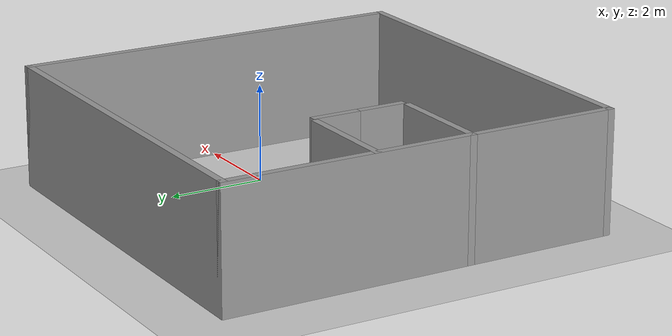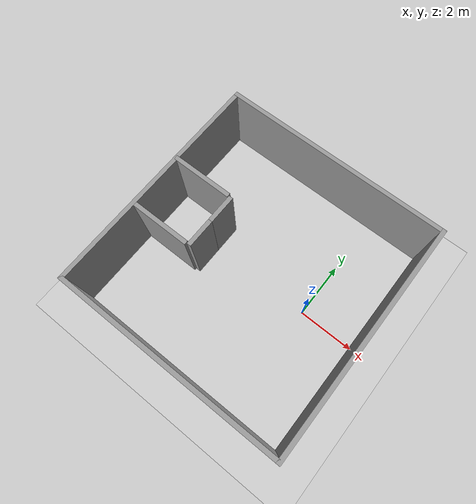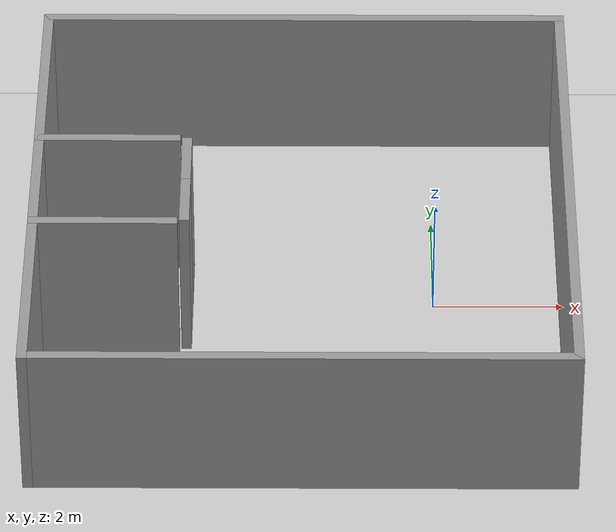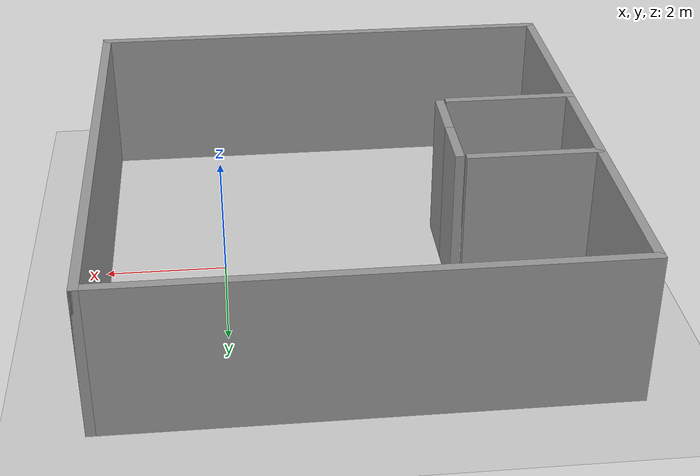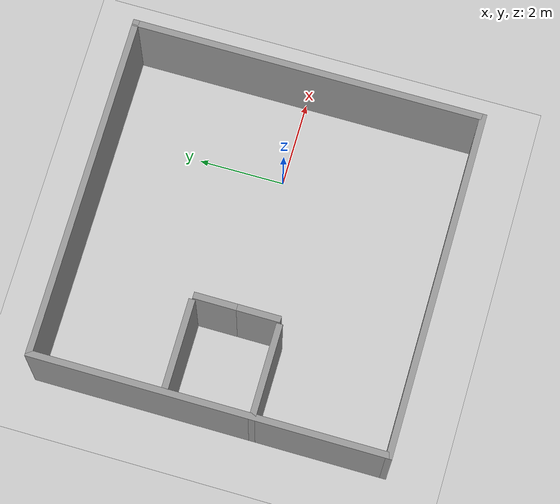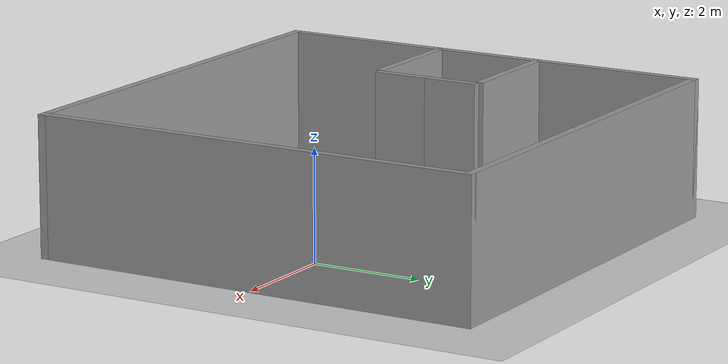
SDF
<sdf version="1.6">
 <world name="default">
  <light name="sun" type="directional">
   <pose>0 0 10 0 -0 0</pose>
   <diffuse>0.8 0.8 0.8 1</diffuse>
   <specular>0.1 0.1 0.1 1</specular>
   <attenuation>
    <range>1000</range>
    <constant>0.9</constant>
    <linear>0.01</linear>
    <quadratic>0.001</quadratic>
   </attenuation>
   <direction>-0.5 0.5 -1</direction>
  </light>
  <model name="ground_plane">
   <static>1</static>
   <link name="link">
    <collision name="collision">
     <geometry><plane><normal>0 0 1</normal><size>100 100</size></plane></geometry>
     <surface><friction><ode><mu>100</mu><mu2>50</mu2></ode></friction></surface>
    </collision>
    <visual name="visual">
     <cast_shadows>0</cast_shadows>
     <geometry><plane><normal>0 0 1</normal><size>100 100</size></plane></geometry>
     <material>
      <script><uri>file://media/materials/scripts/gazebo.material</uri><name>Gazebo/Grey</name></script>
     </material>
    </visual>
   </link>
  </model>
  <gravity>0 0 -9.8</gravity>
  <magnetic_field>6e-06 2.3e-05 -4.2e-05</magnetic_field>
  <atmosphere type="adiabatic"/>
  <physics name="default_physics" default="0" type="ode">
   <max_step_size>0.001</max_step_size>
   <real_time_factor>1</real_time_factor>
   <real_time_update_rate>1000</real_time_update_rate>
  </physics>
  <scene><ambient>0.4 0.4 0.4 1</ambient><background>0.7 0.7 0.7 1</background><shadows>1</shadows></scene>
  <spherical_coordinates>
   <surface_model>EARTH_WGS84</surface_model>
   <latitude_deg>0</latitude_deg>
   <longitude_deg>0</longitude_deg>
   <elevation>0</elevation>
   <heading_deg>0</heading_deg>
  </spherical_coordinates>
  <model name="ep4">
   <pose>-2 0 0 0 -0 0</pose>
   <link name="Wall_0">
    <collision name="Wall_0_Collision">
     <geometry><box><size>8.3 0.15 2.5</size></box></geometry>
     <pose>0 0 1.25 0 -0 0</pose>
    </collision>
    <visual name="Wall_0_Visual">
     <pose>0 0 1.25 0 -0 0</pose>
     <geometry><box><size>8.3 0.15 2.5</size></box></geometry>
     <material>
      <script><uri>file://media/materials/scripts/gazebo.material</uri><name>Gazebo/Grey</name></script>
      <ambient>1 1 1 1</ambient>
     </material>
     <meta><layer>0</layer></meta>
    </visual>
    <pose>-4 0 0 0 -0 1.5708</pose>
   </link>
   <link name="Wall_1">
    <collision name="Wall_1_Collision">
     <geometry><box><size>8.15 0.15 2.5</size></box></geometry>
     <pose>0 0 1.25 0 -0 0</pose>
    </collision>
    <visual name="Wall_1_Visual">
     <pose>0 0 1.25 0 -0 0</pose>
     <geometry><box><size>8.15 0.15 2.5</size></box></geometry>
     <material>
      <script><uri>file://media/materials/scripts/gazebo.material</uri><name>Gazebo/Grey</name></script>
      <ambient>1 1 1 1</ambient>
     </material>
     <meta><layer>0</layer></meta>
    </visual>
    <pose>0 4.075 0 0 -0 0</pose>
   </link>
   <link name="Wall_2">
    <collision name="Wall_2_Collision">
     <geometry><box><size>8.3 0.15 2.5</size></box></geometry>
     <pose>0 0 1.25 0 -0 0</pose>
    </collision>
    <visual name="Wall_2_Visual">
     <pose>0 0 1.25 0 -0 0</pose>
     <geometry><box><size>8.3 0.15 2.5</size></box></geometry>
     <material>
      <script><uri>file://media/materials/scripts/gazebo.material</uri><name>Gazebo/Grey</name></script>
      <ambient>1 1 1 1</ambient>
     </material>
     <meta><layer>0</layer></meta>
    </visual>
    <pose>4 0 0 0 0 -1.5708</pose>
   </link>
   <link name="Wall_3">
    <collision name="Wall_3_Collision">
     <geometry><box><size>8.15 0.15 2.5</size></box></geometry>
     <pose>0 0 1.25 0 -0 0</pose>
    </collision>
    <visual name="Wall_3_Visual">
     <pose>0 0 1.25 0 -0 0</pose>
     <geometry><box><size>8.15 0.15 2.5</size></box></geometry>
     <material>
      <script><uri>file://media/materials/scripts/gazebo.material</uri><name>Gazebo/Grey</name></script>
      <ambient>1 1 1 1</ambient>
     </material>
     <meta><layer>0</layer></meta>
    </visual>
    <pose>0 -4.075 0 0 -0 3.14159</pose>
   </link>
   <link name="Wall_6">
    <collision name="Wall_6_Collision">
     <geometry><box><size>2.225 0.15 2.5</size></box></geometry>
     <pose>0 0 1.25 0 -0 0</pose>
    </collision>
    <visual name="Wall_6_Visual">
     <pose>0 0 1.25 0 -0 0</pose>
     <geometry><box><size>2.225 0.15 2.5</size></box></geometry>
     <material>
      <script><uri>file://media/materials/scripts/gazebo.material</uri><name>Gazebo/Grey</name></script>
      <ambient>1 1 1 1</ambient>
     </material>
     <meta><layer>0</layer></meta>
    </visual>
    <pose>-2.9625 1 0 0 -0 0</pose>
   </link>
   <link name="Wall_8">
    <collision name="Wall_8_Collision">
     <geometry><box><size>2.225 0.15 2.5</size></box></geometry>
     <pose>0 0 1.25 0 -0 0</pose>
    </collision>
    <visual name="Wall_8_Visual">
     <pose>0 0 1.25 0 -0 0</pose>
     <geometry><box><size>2.225 0.15 2.5</size></box></geometry>
     <material>
      <script><uri>file://media/materials/scripts/gazebo.material</uri><name>Gazebo/Grey</name></script>
      <ambient>1 1 1 1</ambient>
     </material>
     <meta><layer>0</layer></meta>
    </visual>
    <pose>-2.9625 -1 0 0 -0 0</pose>
   </link>
   <static>1</static>
  </model>
  <model name="door">
   <link name="door::link_0">
    <inertial>
     <mass>1</mass>
     <inertia>
      <ixx>0.166667</ixx>
      <ixy>0</ixy>
      <ixz>0</ixz>
      <iyy>0.166667</iyy>
      <iyz>0</iyz>
      <izz>0.166667</izz>
     </inertia>
    </inertial>
    <gravity>0</gravity>
    <visual name="visual">
     <geometry><box><size>0.15 1 2.5</size></box></geometry>
     <material>
      <lighting>1</lighting>
      <script><uri>file://media/materials/scripts/gazebo.material</uri><name>Gazebo/Grey</name></script>
      <shader type="pixel"><normal_map>__default__</normal_map></shader>
      <ambient>0.3 0.3 0.3 1</ambient>
      <diffuse>0.7 0.7 0.7 1</diffuse>
      <specular>0.01 0.01 0.01 1</specular>
      <emissive>0 0 0 1</emissive>
     </material>
    </visual>
    <collision name="collision">
     <geometry><box><size>0.15 1 2.5</size></box></geometry>
     <surface>
      <friction>
       <ode><mu>1</mu><mu2>1</mu2><fdir1>0 0 0</fdir1><slip1>0</slip1><slip2>0</slip2></ode>
       <torsional>
        <coefficient>1</coefficient>
        <patch_radius>0</patch_radius>
        <surface_radius>0</surface_radius>
        <use_patch_radius>1</use_patch_radius>
        <ode><slip>0</slip></ode>
       </torsional>
      </friction>
      <bounce><restitution_coefficient>0</restitution_coefficient><threshold>1e+06</threshold></bounce>
      <contact>
       <collide_without_contact>0</collide_without_contact>
       <collide_without_contact_bitmask>1</collide_without_contact_bitmask>
       <collide_bitmask>1</collide_bitmask>
       <ode>
        <soft_cfm>0</soft_cfm>
        <soft_erp>0.2</soft_erp>
        <kp>1e+13</kp>
        <kd>1</kd>
        <max_vel>0.01</max_vel>
        <min_depth>0</min_depth>
       </ode>
       <bullet>
        <split_impulse>1</split_impulse>
        <split_impulse_penetration_threshold>-0.01</split_impulse_penetration_threshold>
        <soft_cfm>0</soft_cfm>
        <soft_erp>0.2</soft_erp>
        <kp>1e+13</kp>
        <kd>1</kd>
       </bullet>
      </contact>
     </surface>
    </collision>
   </link>
   <static>0</static>
   <pose>-3.75 -0.5 1.25 0 -0 0</pose>
   <plugin name="open_door" filename="libopen_door.so"/>
  </model>
  <model name="door_0">
   <link name="door_0::link_0">
    <inertial>
     <mass>1</mass>
     <inertia>
      <ixx>0.166667</ixx>
      <ixy>0</ixy>
      <ixz>0</ixz>
      <iyy>0.166667</iyy>
      <iyz>0</iyz>
      <izz>0.166667</izz>
     </inertia>
    </inertial>
    <gravity>0</gravity>
    <visual name="visual">
     <geometry><box><size>0.15 1 2.5</size></box></geometry>
     <material>
      <lighting>1</lighting>
      <script><uri>file://media/materials/scripts/gazebo.material</uri><name>Gazebo/Grey</name></script>
      <shader type="pixel"><normal_map>__default__</normal_map></shader>
      <ambient>0.3 0.3 0.3 1</ambient>
      <diffuse>0.7 0.7 0.7 1</diffuse>
      <specular>0.01 0.01 0.01 1</specular>
      <emissive>0 0 0 1</emissive>
     </material>
    </visual>
    <collision name="collision">
     <geometry><box><size>0.15 1 2.5</size></box></geometry>
     <surface>
      <friction>
       <ode><mu>1</mu><mu2>1</mu2><fdir1>0 0 0</fdir1><slip1>0</slip1><slip2>0</slip2></ode>
       <torsional>
        <coefficient>1</coefficient>
        <patch_radius>0</patch_radius>
        <surface_radius>0</surface_radius>
        <use_patch_radius>1</use_patch_radius>
        <ode><slip>0</slip></ode>
       </torsional>
      </friction>
      <bounce><restitution_coefficient>0</restitution_coefficient><threshold>1e+06</threshold></bounce>
      <contact>
       <collide_without_contact>0</collide_without_contact>
       <collide_without_contact_bitmask>1</collide_without_contact_bitmask>
       <collide_bitmask>1</collide_bitmask>
       <ode>
        <soft_cfm>0</soft_cfm>
        <soft_erp>0.2</soft_erp>
        <kp>1e+13</kp>
        <kd>1</kd>
        <max_vel>0.01</max_vel>
        <min_depth>0</min_depth>
       </ode>
       <bullet>
        <split_impulse>1</split_impulse>
        <split_impulse_penetration_threshold>-0.01</split_impulse_penetration_threshold>
        <soft_cfm>0</soft_cfm>
        <soft_erp>0.2</soft_erp>
        <kp>1e+13</kp>
        <kd>1</kd>
       </bullet>
      </contact>
     </surface>
    </collision>
   </link>
   <static>0</static>
   <pose>-3.75 0.5 1.25 0 -0 0</pose>
   <plugin name="open_door" filename="libopen_door.so"/>
  </model>
 </world>
</sdf>
